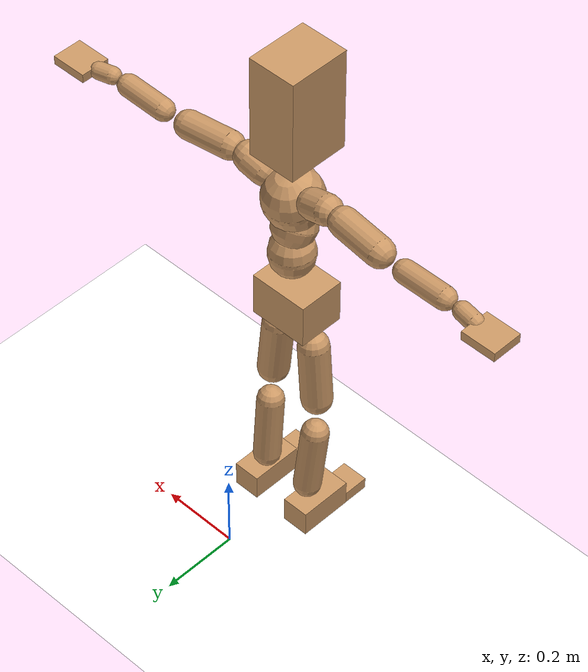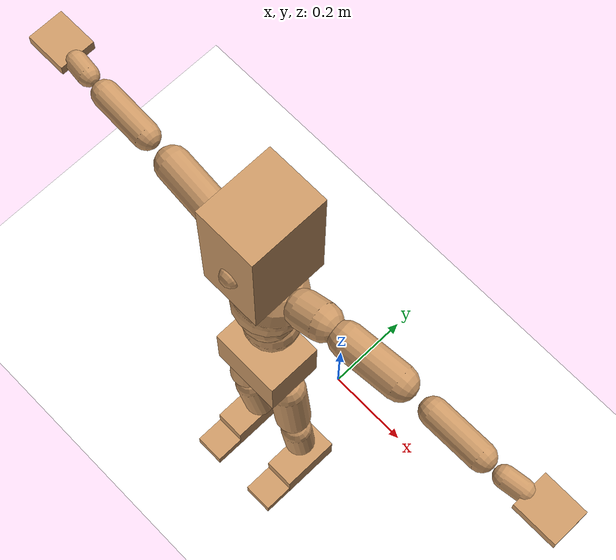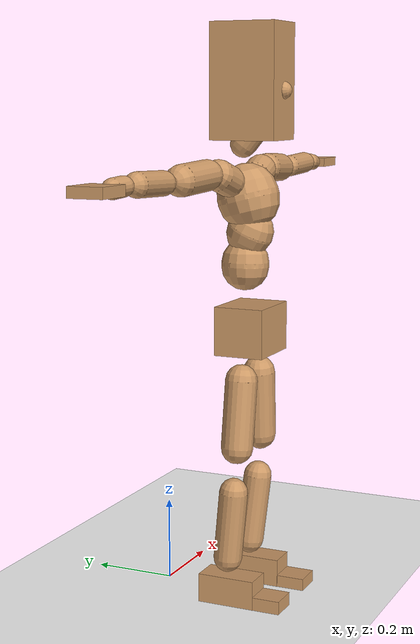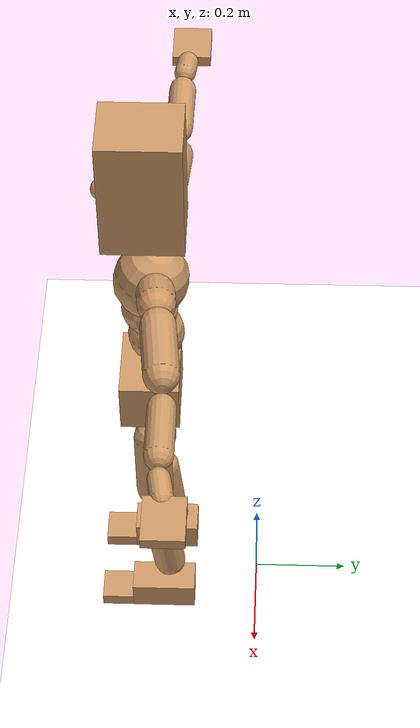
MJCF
<mujoco model="humanoid">
  <option integrator="implicitfast" />

  <visual>
    <global offwidth="1280" offheight="960" />
    <headlight active="1" ambient="0.34 0.34 0.34" diffuse="0.5 0.5 0.5" />
  </visual>

  <default>
    <joint damping="2" stiffness="2" armature="0.01" limited="true" solimplimit="0 .99 .01" />
    <geom condim="1" friction="0.7 0.005 0.0001" solimp=".99 .99 .003" solref="0.015 1" margin="0.001" rgba="0.8 0.6 .4 1" />
    <default class="smplcontact">
      <geom condim="3" friction="1. 0.005 0.0001" solref="0.015 1" solimp="0.98 0.98 0.001" priority="1" />
    </default>
    <default class="stiff_medium">
      <joint stiffness="10" />
    </default>
    <default class="stiff_medium_higher">
      <joint stiffness="50" />
    </default>
    <default class="stiff_high">
      <joint stiffness="100" />
    </default>
  </default>

  <asset>
    <texture type="skybox" builtin="gradient" rgb1="0.99 0.99 0.99" rgb2="0.608 0.828 0.892" width="100" />
    <texture builtin="flat" height="1278" mark="cross" markrgb="1 1 1" name="texgeom" random="0.01" rgb1="0.8 0.6 0.4" rgb2="0.8 0.6 0.4" type="cube" width="127" />
    <texture name="texplane" type="2d" builtin="checker" markrgb="1 1 1" rgb1="0.756 0.772 0.76" rgb2="0.6 0.6 0.6" width="100" height="100" />
    <material name="MatPlane" reflectance="0.5" texture="texplane" texrepeat="1 1" texuniform="true" />
    <material name="geom" texture="texgeom" texuniform="true" />
  </asset>

  <worldbody>
    <light name="tracking_light" pos="0 0 7" dir="0 0 -1" directional="true" cutoff="100" exponent="1" diffuse="1 1 1" specular="0.1 0.1 0.1" mode="trackcom" />
    <camera name="back" pos="0 3 2.4" xyaxes="-1 0 0 0 -1 2" mode="trackcom" />
    <camera name="side" pos="-3 0 2.4" xyaxes="0 -1 0 1 0 2" mode="trackcom" />
    <camera name="front_side" pos="-2.8 -2.8 0.8" xyaxes="0.5 -0.5 0 0.1 0.1 1" mode="trackcom" />
    <geom condim="3" name="floor" pos="0 0 0" rgba="1 1 1 1" size="100 100 .2" type="plane" material="MatPlane" />
    <body name="Pelvis" pos="-0.0018 -0.2233 0.663306" euler="90 0 0">
      <site name="Pelvis" size="0.01" />
      <freejoint name="Pelvis" />
      <geom type="box" pos="0 -0.00967277 -0.00397375" size="0.0772353 0.0577169 0.0599675" quat="1.0000 0.0000 0.0000 0.0000" density="3165.830099" name="Pelvis" />
      <body name="L_Hip" pos="0.0502138 -0.0730654 -0.004913">
        <joint name="L_Hip_x" type="hinge" pos="0 0 0" axis="1 0 0" stiffness="10" range="-160.0 22.92" class="stiff_medium" damping="15" />
        <joint name="L_Hip_y" type="hinge" pos="0 0 0" axis="0 1 0" stiffness="10" range="-70.0 70.0" class="stiff_medium" damping="10" />
        <joint name="L_Hip_z" type="hinge" pos="0 0 0" axis="0 0 1" stiffness="10" range="-28.65 90.0" class="stiff_medium" damping="10" />
        <geom type="capsule" density="2040.816327" fromto="0.0048 -0.0522268 -0.000626669 0.0190752 -0.209045 -0.00250682" size="0.0387081" name="L_Hip" />
        <body name="L_Knee" pos="0.0238752 -0.261272 -0.00313349">
          <joint name="L_Knee_x" type="hinge" pos="0 0 0" axis="1 0 0" range="-5.16 171.89" damping="8" />
          <joint name="L_Knee_y" type="hinge" pos="0 0 0" axis="0 1 0" range="-4.58 6.88" damping="8" />
          <joint name="L_Knee_z" type="hinge" pos="0 0 0" axis="0 0 1" range="-6.88 4.58" damping="8" />
          <geom type="capsule" density="1234.567901" fromto="-0.00188236 -0.0554291 -0.00606266 -0.00759245 -0.221718 -0.0243767" size="0.0340505" name="L_Knee" />
          <body name="L_Ankle" pos="-0.00947481 -0.277147 -0.0304394">
            <joint name="L_Ankle_x" type="hinge" pos="0 0 0" axis="1 0 0" range="-45.84 45.84" class="stiff_medium" damping="6" />
            <joint name="L_Ankle_y" type="hinge" pos="0 0 0" axis="0 1 0" range="-74.48 22.92" class="stiff_medium" damping="3" />
            <joint name="L_Ankle_z" type="hinge" pos="0 0 0" axis="0 0 1" range="-4.58 4.58" class="stiff_medium" damping="6" />
            <geom type="box" pos="0.0168343 -0.0172678 0.0194416" size="0.0348968 0.033524 0.0682865" quat="1.0000 0.0000 0.0000 0.0000" density="449.071558" name="L_Ankle" class="smplcontact" />
            <body name="L_Toe" pos="0.019074 -0.0403155 0.0958422">
              <joint name="L_Toe_x" type="hinge" pos="0 0 0" axis="1 0 0" range="-91.67 22.92" />
              <joint name="L_Toe_y" type="hinge" pos="0 0 0" axis="0 1 0" range="-4.58 4.58" />
              <joint name="L_Toe_z" type="hinge" pos="0 0 0" axis="0 0 1" range="-4.58 4.58" />
              <geom type="box" pos="-0.0021675 0.00397375 0.0199236" size="0.0345355 0.01445 0.0398472" quat="1.0000 0.0000 0.0000 0.0000" density="423.206892" name="L_Toe" class="smplcontact" />
            </body>
          </body>
        </body>
      </body>
      <body name="R_Hip" pos="-0.0489132 -0.0723459 -0.00310675">
        <joint name="R_Hip_x" type="hinge" pos="0 0 0" axis="1 0 0" stiffness="10" range="-160.0 22.92" class="stiff_medium" damping="15" />
        <joint name="R_Hip_y" type="hinge" pos="0 0 0" axis="0 1 0" stiffness="10" range="-70.0 70.0" class="stiff_medium" damping="10" />
        <joint name="R_Hip_z" type="hinge" pos="0 0 0" axis="0 0 1" stiffness="10" range="-90.0 28.65" class="stiff_medium" damping="10" />
        <geom type="capsule" density="2040.816327" fromto="-0.00535728 -0.0532714 -0.00125116 -0.0213037 -0.213154 -0.00494183" size="0.0381416" name="R_Hip" />
        <body name="R_Knee" pos="-0.026661 -0.266425 -0.00619299">
          <joint name="R_Knee_x" type="hinge" pos="0 0 0" axis="1 0 0" range="-5.16 171.89" damping="8" />
          <joint name="R_Knee_y" type="hinge" pos="0 0 0" axis="0 1 0" range="-6.88 4.58" damping="8" />
          <joint name="R_Knee_z" type="hinge" pos="0 0 0" axis="0 0 1" range="-4.58 6.88" damping="8" />
          <geom type="capsule" density="1234.567901" fromto="0.00222397 -0.0554999 -0.00591483 0.00876968 -0.221928 -0.0235325" size="0.0340505" name="R_Knee" />
          <body name="R_Ankle" pos="0.0109937 -0.277428 -0.0294474">
            <joint name="R_Ankle_x" type="hinge" pos="0 0 0" axis="1 0 0" range="-45.84 45.84" class="stiff_medium" damping="6" />
            <joint name="R_Ankle_y" type="hinge" pos="0 0 0" axis="0 1 0" range="-22.92 74.48" class="stiff_medium" damping="3" />
            <joint name="R_Ankle_z" type="hinge" pos="0 0 0" axis="0 0 1" range="-4.58 4.58" class="stiff_medium" damping="6" />
            <geom type="box" pos="-0.015317 -0.0125715 0.0205663" size="0.0348968 0.0345355 0.0694916" quat="1.0000 0.0000 0.0000 0.0000" density="434.700981" name="R_Ankle" class="smplcontact" />
            <body name="R_Toe" pos="-0.0183515 -0.0347522 0.0990557">
              <joint name="R_Toe_x" type="hinge" pos="0 0 0" axis="1 0 0" range="-91.67 22.92" />
              <joint name="R_Toe_y" type="hinge" pos="0 0 0" axis="0 1 0" range="-4.58 4.58" />
              <joint name="R_Toe_z" type="hinge" pos="0 0 0" axis="0 0 1" range="-4.58 4.58" />
              <geom type="box" pos="0.0030345 0.00325125 0.0182365" size="0.0346077 0.015606 0.0396062" quat="1.0000 0.0000 0.0000 0.0000" density="407.384095" name="R_Toe" class="smplcontact" />
            </body>
          </body>
        </body>
      </body>
      <body name="Torso" pos="-0.00180625 0.0871349 -0.0192908">
        <joint name="Torso_x" type="hinge" pos="0 0 0" axis="1 0 0" range="-25.78 57.3" class="stiff_medium" damping="15" />
        <joint name="Torso_y" type="hinge" pos="0 0 0" axis="0 1 0" range="-57.3 57.3" class="stiff_high" damping="20" />
        <joint name="Torso_z" type="hinge" pos="0 0 0" axis="0 0 1" range="-34.38 34.38" class="stiff_high" damping="20" />
        <geom type="capsule" density="2040.816327" fromto="0.00199976 0.0491031 0.000399951 0.00240356 0.0600057 0.000480712" size="0.0561293" name="Torso" />
        <body name="Spine" pos="0.0044036 0.10919 0.00088072">
          <joint name="Spine_x" type="hinge" pos="0 0 0" axis="1 0 0" stiffness="10" range="-25.78 57.3" class="stiff_medium" damping="15" />
          <joint name="Spine_y" type="hinge" pos="0 0 0" axis="0 1 0" stiffness="10" range="-57.3 57.3" class="stiff_high" damping="8" />
          <joint name="Spine_z" type="hinge" pos="0 0 0" axis="0 0 1" stiffness="20" range="-34.38 34.38" class="stiff_high" damping="12" />
          <geom type="capsule" density="2040.816327" fromto="0.00054567 0.0192128 0.00922409 0.00062643 0.0234931 0.0113239" size="0.0551074" name="Spine" />
          <body name="Chest" pos="0.0011721 0.0427059 0.0205479">
            <joint name="Chest_x" type="hinge" pos="0 0 0" axis="1 0 0" stiffness="10" range="-25.78 57.3" class="stiff_medium" damping="15" />
            <joint name="Chest_y" type="hinge" pos="0 0 0" axis="0 1 0" stiffness="10" range="-57.3 57.3" class="stiff_high" damping="8" />
            <joint name="Chest_z" type="hinge" pos="0 0 0" axis="0 0 1" stiffness="20" range="-34.38 34.38" class="stiff_high" damping="12" />
            <geom type="capsule" density="2040.816327" fromto="-0.000691968 0.0550729 -0.0139945 -0.000772728 0.0672677 -0.0171442" size="0.073136" name="Chest" />
            <body name="Neck" pos="-0.00215226 0.172515 -0.0355457">
              <joint name="Neck_x" type="hinge" pos="0 0 0" axis="1 0 0" range="-28.65 57.3" class="stiff_medium_higher" damping="10" />
              <joint name="Neck_y" type="hinge" pos="0 0 0" axis="0 1 0" range="-40.11 40.11" class="stiff_medium_higher" damping="10" />
              <joint name="Neck_z" type="hinge" pos="0 0 0" axis="0 0 1" range="-40.11 40.11" class="stiff_medium_higher" damping="10" />
              <geom type="capsule" density="1000" fromto="0.000806036 0.0104449 0.00827303 0.00329649 0.0417764 0.0330169" size="0.031658" name="Neck" />
              <body name="Head" pos="0.00417486 0.052218 0.0412146">
                <joint name="Head_x" type="hinge" pos="0 0 0" axis="1 0 0" range="-28.65 57.3" class="stiff_medium_higher" damping="2" />
                <joint name="Head_y" type="hinge" pos="0 0 0" axis="0 1 0" range="-40.11 40.11" class="stiff_medium_higher" damping="2" />
                <joint name="Head_z" type="hinge" pos="0 0 0" axis="0 0 1" range="-40.11 40.11" class="stiff_medium_higher" damping="2" />
                <geom type="box" pos="-0.00438732 0.101258 -0.0121174" size="0.0633028 0.133392 0.0793896" quat="1.0000 0.0000 0.0000 0.0000" density="1018.069894" name="Head" />
                <geom type="capsule" name="nose" size="0.020892 0.010446" pos="0 0.0809139 0.05223" quat="1 0 0 0" mass="0" contype="0" conaffinity="0" />
              </body>
            </body>
            <body name="L_Thorax" pos="0.0574534 0.0982972 -0.0273351">
              <joint name="L_Thorax_x" type="hinge" pos="0 0 0" axis="1 0 0" range="-10.89 4.58" class="stiff_medium_higher" damping="20" />
              <joint name="L_Thorax_y" type="hinge" pos="0 0 0" axis="0 1 0" range="-28.65 17.19" class="stiff_medium_higher" damping="20" />
              <joint name="L_Thorax_z" type="hinge" pos="0 0 0" axis="0 0 1" range="-31.51 40.11" class="stiff_medium_higher" damping="20" />
              <geom type="capsule" density="1000" fromto="0.0144025 0.00482721 -0.00142188 0.0576093 0.0193086 -0.00561595" size="0.0372567" name="L_Thorax" />
              <body name="L_Shoulder" pos="0.0720118 0.0241358 -0.00703782">
                <joint name="L_Shoulder_x" type="hinge" pos="0 0 0" axis="1 0 0" range="-97.4 97.4" class="stiff_medium" damping="6" />
                <joint name="L_Shoulder_y" type="hinge" pos="0 0 0" axis="0 1 0" range="-108.86 80.21" class="stiff_medium" damping="6" />
                <joint name="L_Shoulder_z" type="hinge" pos="0 0 0" axis="0 0 1" range="-97.4 85.94" class="stiff_medium" damping="6" />
                <geom type="capsule" density="1000" fromto="0.0384272 -0.0019202 -0.00407199 0.153782 -0.00754726 -0.0162886" size="0.0345976" name="L_Shoulder" />
                <body name="L_Elbow" pos="0.192209 -0.00946746 -0.0203606">
                  <joint name="L_Elbow_x" type="hinge" pos="0 0 0" axis="1 0 0" range="-17.19 4.58" damping="5" />
                  <joint name="L_Elbow_y" type="hinge" pos="0 0 0" axis="0 1 0" range="-180.0 17.19" damping="5" />
                  <joint name="L_Elbow_z" type="hinge" pos="0 0 0" axis="0 0 1" range="-100.84 4.58" damping="5" />
                  <geom type="capsule" density="1000" fromto="0.0368721 0.00133255 -0.000150432 0.147636 0.00533073 -0.000668714" size="0.0271026" name="L_Elbow" />
                  <body name="L_Wrist" pos="0.184508 0.00666329 -0.000886066">
                    <joint name="L_Wrist_x" type="hinge" pos="0 0 0" axis="1 0 0" range="-180.0 22.92" />
                    <joint name="L_Wrist_y" type="hinge" pos="0 0 0" axis="0 1 0" range="-17.19 17.19" />
                    <joint name="L_Wrist_z" type="hinge" pos="0 0 0" axis="0 0 1" range="-22.92 22.92" />
                    <geom type="capsule" density="1000" fromto="0.0124386 -0.001187 -0.00222117 0.0497549 -0.00481497 -0.0088848" size="0.0212806" name="L_Wrist" class="smplcontact" />
                    <body name="L_Hand" pos="0.0621929 -0.00606883 -0.0110389">
                      <joint name="L_Hand_x" type="hinge" pos="0 0 0" axis="1 0 0" range="-17.19 17.19" />
                      <joint name="L_Hand_y" type="hinge" pos="0 0 0" axis="0 1 0" range="-51.57 51.57" />
                      <joint name="L_Hand_z" type="hinge" pos="0 0 0" axis="0 0 1" range="-91.67 91.67" />
                      <geom type="box" pos="0.0394105 0.0007225 -0.0041905" size="0.046765 0.0114155 0.0388705" quat="1.0000 0.0000 0.0000 0.0000" density="400.552564" name="L_Hand" class="smplcontact" />
                    </body>
                  </body>
                </body>
              </body>
            </body>
            <body name="R_Thorax" pos="-0.0597682 0.0961314 -0.0306069">
              <joint name="R_Thorax_x" type="hinge" pos="0 0 0" axis="1 0 0" range="-10.89 4.58" class="stiff_medium_higher" damping="20" />
              <joint name="R_Thorax_y" type="hinge" pos="0 0 0" axis="0 1 0" range="-17.19 28.65" class="stiff_medium_higher" damping="20" />
              <joint name="R_Thorax_z" type="hinge" pos="0 0 0" axis="0 0 1" range="-40.11 31.51" class="stiff_medium_higher" damping="20" />
              <geom type="capsule" density="1000" fromto="-0.0151934 0.00514359 -0.00142692 -0.0607742 0.0205746 -0.00577925" size="0.0365416" name="R_Thorax" />
              <body name="R_Shoulder" pos="-0.0759698 0.0257905 -0.00720639">
                <joint name="R_Shoulder_x" type="hinge" pos="0 0 0" axis="1 0 0" range="-97.4 97.4" class="stiff_medium" damping="6" />
                <joint name="R_Shoulder_y" type="hinge" pos="0 0 0" axis="0 1 0" range="-80.21 108.86" class="stiff_medium" damping="6" />
                <joint name="R_Shoulder_z" type="hinge" pos="0 0 0" axis="0 0 1" range="-85.94 97.4" class="stiff_medium" damping="6" />
                <geom type="capsule" density="1000" fromto="-0.0375388 -0.00199648 -0.00318099 -0.150302 -0.00791971 -0.0126582" size="0.0355345" name="R_Shoulder" />
                <body name="R_Elbow" pos="-0.187841 -0.00984925 -0.0158391">
                  <joint name="R_Elbow_x" type="hinge" pos="0 0 0" axis="1 0 0" range="-17.19 4.58" damping="5" />
                  <joint name="R_Elbow_y" type="hinge" pos="0 0 0" axis="0 1 0" range="-17.19 180.0" damping="5" />
                  <joint name="R_Elbow_z" type="hinge" pos="0 0 0" axis="0 0 1" range="-4.58 100.84" damping="5" />
                  <geom type="capsule" density="1000" fromto="-0.0378347 0.00118004 -0.000814549 -0.15119 0.0045859 -0.00325788" size="0.0273034" name="R_Elbow" />
                  <body name="R_Wrist" pos="-0.189025 0.00576595 -0.00413935">
                    <joint name="R_Wrist_x" type="hinge" pos="0 0 0" axis="1 0 0" range="-180.0 22.92" />
                    <joint name="R_Wrist_y" type="hinge" pos="0 0 0" axis="0 1 0" range="-17.19 17.19" />
                    <joint name="R_Wrist_z" type="hinge" pos="0 0 0" axis="0 0 1" range="-22.92 22.92" />
                    <geom type="capsule" density="1000" fromto="-0.012513 -0.000890696 -0.0015522 -0.0501255 -0.00363019 -0.0061427" size="0.0218159" name="R_Wrist" class="smplcontact" />
                    <body name="R_Hand" pos="-0.0626376 -0.00452082 -0.00762788">
                      <joint name="R_Hand_x" type="hinge" pos="0 0 0" axis="1 0 0" range="-17.19 17.19" />
                      <joint name="R_Hand_y" type="hinge" pos="0 0 0" axis="0 1 0" range="-51.57 51.57" />
                      <joint name="R_Hand_z" type="hinge" pos="0 0 0" axis="0 0 1" range="-91.67 91.67" />
                      <geom type="box" pos="-0.0369324 -0.00065025 -0.00570775" size="0.045486 0.011849 0.0394485" quat="1.0000 0.0000 0.0000 0.0000" density="403.679611" name="R_Hand" class="smplcontact" />
                    </body>
                  </body>
                </body>
              </body>
            </body>
          </body>
        </body>
      </body>
    </body>
  </worldbody>
  <actuator>
    <general name="L_Hip_x" joint="L_Hip_x" biastype="affine" gainprm="287.33006409732246" biasprm="-215.3247604770444 -180 -2.0" ctrllimited="true" ctrlrange="-1 1" forcerange="-360 360" />
    <general name="L_Hip_y" joint="L_Hip_y" biastype="affine" gainprm="219.9114857512855" biasprm="0.0 -180 -2.0" ctrllimited="true" ctrlrange="-1 1" forcerange="-360 360" />
    <general name="L_Hip_z" joint="L_Hip_z" biastype="affine" gainprm="186.3749841742145" biasprm="96.3683546488669 -180 -2.0" ctrllimited="true" ctrlrange="-1 1" forcerange="-360 360" />
    <general name="L_Knee_x" joint="L_Knee_x" biastype="affine" gainprm="278.10948965903646" biasprm="261.8988715665131 -180 -2.0" ctrllimited="true" ctrlrange="-1 1" forcerange="-360 360" />
    <general name="L_Knee_y" joint="L_Knee_y" biastype="affine" gainprm="18.001325905069514" biasprm="3.612831551628262 -180 -2.0" ctrllimited="true" ctrlrange="-1 1" forcerange="-360 360" />
    <general name="L_Knee_z" joint="L_Knee_z" biastype="affine" gainprm="18.001325905069514" biasprm="-3.612831551628262 -180 -2.0" ctrllimited="true" ctrlrange="-1 1" forcerange="-360 360" />
    <general name="L_Ankle_x" joint="L_Ankle_x" biastype="affine" gainprm="72.00530362027807" biasprm="0.0 -90 -2.0" ctrllimited="true" ctrlrange="-1 1" forcerange="-180 180" />
    <general name="L_Ankle_y" joint="L_Ankle_y" biastype="affine" gainprm="76.49778111491148" biasprm="-40.49512930477244 -90 -2.0" ctrllimited="true" ctrlrange="-1 1" forcerange="-180 180" />
    <general name="L_Ankle_z" joint="L_Ankle_z" biastype="affine" gainprm="7.1942471767206255" biasprm="0.0 -90 -2.0" ctrllimited="true" ctrlrange="-1 1" forcerange="-180 180" />
    <general name="L_Toe_x" joint="L_Toe_x" biastype="affine" gainprm="71.99902043497087" biasprm="-43.19689898685965 -72 -0.8" ctrllimited="true" ctrlrange="-1 1" forcerange="-144 144" />
    <general name="L_Toe_y" joint="L_Toe_y" biastype="affine" gainprm="5.755397741376501" biasprm="0.0 -72 -0.8" ctrllimited="true" ctrlrange="-1 1" forcerange="-144 144" />
    <general name="L_Toe_z" joint="L_Toe_z" biastype="affine" gainprm="5.755397741376501" biasprm="0.0 -72 -0.8" ctrllimited="true" ctrlrange="-1 1" forcerange="-144 144" />
    <general name="R_Hip_x" joint="R_Hip_x" biastype="affine" gainprm="287.33006409732246" biasprm="-215.3247604770444 -180 -2.0" ctrllimited="true" ctrlrange="-1 1" forcerange="-360 360" />
    <general name="R_Hip_y" joint="R_Hip_y" biastype="affine" gainprm="219.9114857512855" biasprm="0.0 -180 -2.0" ctrllimited="true" ctrlrange="-1 1" forcerange="-360 360" />
    <general name="R_Hip_z" joint="R_Hip_z" biastype="affine" gainprm="186.3749841742145" biasprm="-96.3683546488669 -180 -2.0" ctrllimited="true" ctrlrange="-1 1" forcerange="-360 360" />
    <general name="R_Knee_x" joint="R_Knee_x" biastype="affine" gainprm="278.10948965903646" biasprm="261.8988715665131 -180 -2.0" ctrllimited="true" ctrlrange="-1 1" forcerange="-360 360" />
    <general name="R_Knee_y" joint="R_Knee_y" biastype="affine" gainprm="18.001325905069514" biasprm="-3.612831551628262 -180 -2.0" ctrllimited="true" ctrlrange="-1 1" forcerange="-360 360" />
    <general name="R_Knee_z" joint="R_Knee_z" biastype="affine" gainprm="18.001325905069514" biasprm="3.612831551628262 -180 -2.0" ctrllimited="true" ctrlrange="-1 1" forcerange="-360 360" />
    <general name="R_Ankle_x" joint="R_Ankle_x" biastype="affine" gainprm="72.00530362027807" biasprm="0.0 -90 -2.0" ctrllimited="true" ctrlrange="-1 1" forcerange="-180 180" />
    <general name="R_Ankle_y" joint="R_Ankle_y" biastype="affine" gainprm="76.49778111491148" biasprm="40.49512930477244 -90 -2.0" ctrllimited="true" ctrlrange="-1 1" forcerange="-180 180" />
    <general name="R_Ankle_z" joint="R_Ankle_z" biastype="affine" gainprm="7.1942471767206255" biasprm="0.0 -90 -2.0" ctrllimited="true" ctrlrange="-1 1" forcerange="-180 180" />
    <general name="R_Toe_x" joint="R_Toe_x" biastype="affine" gainprm="71.99902043497087" biasprm="-43.19689898685965 -72 -0.8" ctrllimited="true" ctrlrange="-1 1" forcerange="-144 144" />
    <general name="R_Toe_y" joint="R_Toe_y" biastype="affine" gainprm="5.755397741376501" biasprm="0.0 -72 -0.8" ctrllimited="true" ctrlrange="-1 1" forcerange="-144 144" />
    <general name="R_Toe_z" joint="R_Toe_z" biastype="affine" gainprm="5.755397741376501" biasprm="0.0 -72 -0.8" ctrllimited="true" ctrlrange="-1 1" forcerange="-144 144" />
    <general name="Torso_x" joint="Torso_x" biastype="affine" gainprm="174.00234510682668" biasprm="66.0153336274335 -240 -4.0" ctrllimited="true" ctrlrange="-1 1" forcerange="-360 360" />
    <general name="Torso_y" joint="Torso_y" biastype="affine" gainprm="240.0176787342602" biasprm="0.0 -240 -4.0" ctrllimited="true" ctrlrange="-1 1" forcerange="-360 360" />
    <general name="Torso_z" joint="Torso_z" biastype="affine" gainprm="144.01060724055614" biasprm="0.0 -240 -4.0" ctrllimited="true" ctrlrange="-1 1" forcerange="-360 360" />
    <general name="Spine_x" joint="Spine_x" biastype="affine" gainprm="174.00234510682668" biasprm="66.0153336274335 -240 -4.0" ctrllimited="true" ctrlrange="-1 1" forcerange="-360 360" />
    <general name="Spine_y" joint="Spine_y" biastype="affine" gainprm="240.0176787342602" biasprm="0.0 -240 -4.0" ctrllimited="true" ctrlrange="-1 1" forcerange="-360 360" />
    <general name="Spine_z" joint="Spine_z" biastype="affine" gainprm="144.01060724055614" biasprm="0.0 -240 -4.0" ctrllimited="true" ctrlrange="-1 1" forcerange="-360 360" />
    <general name="Chest_x" joint="Chest_x" biastype="affine" gainprm="174.00234510682668" biasprm="66.0153336274335 -240 -4.0" ctrllimited="true" ctrlrange="-1 1" forcerange="-360 360" />
    <general name="Chest_y" joint="Chest_y" biastype="affine" gainprm="240.0176787342602" biasprm="0.0 -240 -4.0" ctrllimited="true" ctrlrange="-1 1" forcerange="-360 360" />
    <general name="Chest_z" joint="Chest_z" biastype="affine" gainprm="144.01060724055614" biasprm="0.0 -240 -4.0" ctrllimited="true" ctrlrange="-1 1" forcerange="-360 360" />
    <general name="Neck_x" joint="Neck_x" biastype="affine" gainprm="27.00198885760427" biasprm="9.000662952534757 -36 -0.8" ctrllimited="true" ctrlrange="-1 1" forcerange="-72 72" />
    <general name="Neck_y" joint="Neck_y" biastype="affine" gainprm="25.20185626709732" biasprm="0.0 -36 -0.8" ctrllimited="true" ctrlrange="-1 1" forcerange="-72 72" />
    <general name="Neck_z" joint="Neck_z" biastype="affine" gainprm="25.20185626709732" biasprm="0.0 -36 -0.8" ctrllimited="true" ctrlrange="-1 1" forcerange="-72 72" />
    <general name="Head_x" joint="Head_x" biastype="affine" gainprm="18.001325905069514" biasprm="6.000441968356505 -24 -0.8" ctrllimited="true" ctrlrange="-1 1" forcerange="-48 48" />
    <general name="Head_y" joint="Head_y" biastype="affine" gainprm="16.801237511398213" biasprm="0.0 -24 -0.8" ctrllimited="true" ctrlrange="-1 1" forcerange="-48 48" />
    <general name="Head_z" joint="Head_z" biastype="affine" gainprm="16.801237511398213" biasprm="0.0 -24 -0.8" ctrllimited="true" ctrlrange="-1 1" forcerange="-48 48" />
    <general name="L_Thorax_x" joint="L_Thorax_x" biastype="affine" gainprm="16.200146117011364" biasprm="-6.6078165480505335 -120 -1.6" ctrllimited="true" ctrlrange="-1 1" forcerange="-240 240" />
    <general name="L_Thorax_y" joint="L_Thorax_y" biastype="affine" gainprm="48.00353574685204" biasprm="-12.00088393671301 -120 -1.6" ctrllimited="true" ctrlrange="-1 1" forcerange="-240 240" />
    <general name="L_Thorax_z" joint="L_Thorax_z" biastype="affine" gainprm="75.00028861670033" biasprm="9.00589894029074 -120 -1.6" ctrllimited="true" ctrlrange="-1 1" forcerange="-240 240" />
    <general name="L_Shoulder_x" joint="L_Shoulder_x" biastype="affine" gainprm="81.5976331892389" biasprm="0.0 -48 -1.6" ctrllimited="true" ctrlrange="-1 1" forcerange="-96 96" />
    <general name="L_Shoulder_y" joint="L_Shoulder_y" biastype="affine" gainprm="79.19745640189629" biasprm="-12.00088393671301 -48 -1.6" ctrllimited="true" ctrlrange="-1 1" forcerange="-96 96" />
    <general name="L_Shoulder_z" joint="L_Shoulder_z" biastype="affine" gainprm="76.79727961455369" biasprm="-4.800353574685214 -48 -1.6" ctrllimited="true" ctrlrange="-1 1" forcerange="-96 96" />
    <general name="L_Elbow_x" joint="L_Elbow_x" biastype="affine" gainprm="13.67849441372996" biasprm="-7.923096672353461 -72 -0.8" ctrllimited="true" ctrlrange="-1 1" forcerange="-144 144" />
    <general name="L_Elbow_y" joint="L_Elbow_y" biastype="affine" gainprm="123.89813107227425" biasprm="-102.29653998619085 -72 -0.8" ctrllimited="true" ctrlrange="-1 1" forcerange="-144 144" />
    <general name="L_Elbow_z" joint="L_Elbow_z" biastype="affine" gainprm="66.23733950828719" biasprm="-60.4819417669107 -72 -0.8" ctrllimited="true" ctrlrange="-1 1" forcerange="-144 144" />
    <general name="L_Wrist_x" joint="L_Wrist_x" biastype="affine" gainprm="21.24973270888136" biasprm="-16.449379134196157 -12 -0.8" ctrllimited="true" ctrlrange="-1 1" forcerange="-24 24" />
    <general name="L_Wrist_y" joint="L_Wrist_y" biastype="affine" gainprm="3.6002651810139037" biasprm="0.0 -12 -0.8" ctrllimited="true" ctrlrange="-1 1" forcerange="-24 24" />
    <general name="L_Wrist_z" joint="L_Wrist_z" biastype="affine" gainprm="4.800353574685205" biasprm="0.0 -12 -0.8" ctrllimited="true" ctrlrange="-1 1" forcerange="-24 24" />
    <general name="L_Hand_x" joint="L_Hand_x" biastype="affine" gainprm="3.6002651810139037" biasprm="0.0 -12 -0.8" ctrllimited="true" ctrlrange="-1 1" forcerange="-24 24" />
    <general name="L_Hand_y" joint="L_Hand_y" biastype="affine" gainprm="10.800795543041708" biasprm="0.0 -12 -0.8" ctrllimited="true" ctrlrange="-1 1" forcerange="-24 24" />
    <general name="L_Hand_z" joint="L_Hand_z" biastype="affine" gainprm="19.199319903638422" biasprm="0.0 -12 -0.8" ctrllimited="true" ctrlrange="-1 1" forcerange="-24 24" />
    <general name="R_Thorax_x" joint="R_Thorax_x" biastype="affine" gainprm="16.200146117011364" biasprm="-6.6078165480505335 -120 -1.6" ctrllimited="true" ctrlrange="-1 1" forcerange="-240 240" />
    <general name="R_Thorax_y" joint="R_Thorax_y" biastype="affine" gainprm="48.00353574685204" biasprm="12.000883936713002 -120 -1.6" ctrllimited="true" ctrlrange="-1 1" forcerange="-240 240" />
    <general name="R_Thorax_z" joint="R_Thorax_z" biastype="affine" gainprm="75.00028861670033" biasprm="-9.00589894029074 -120 -1.6" ctrllimited="true" ctrlrange="-1 1" forcerange="-240 240" />
    <general name="R_Shoulder_x" joint="R_Shoulder_x" biastype="affine" gainprm="81.5976331892389" biasprm="0.0 -48 -1.6" ctrllimited="true" ctrlrange="-1 1" forcerange="-96 96" />
    <general name="R_Shoulder_y" joint="R_Shoulder_y" biastype="affine" gainprm="79.19745640189629" biasprm="12.00088393671301 -48 -1.6" ctrllimited="true" ctrlrange="-1 1" forcerange="-96 96" />
    <general name="R_Shoulder_z" joint="R_Shoulder_z" biastype="affine" gainprm="76.79727961455369" biasprm="4.800353574685204 -48 -1.6" ctrllimited="true" ctrlrange="-1 1" forcerange="-96 96" />
    <general name="R_Elbow_x" joint="R_Elbow_x" biastype="affine" gainprm="13.67849441372996" biasprm="-7.923096672353461 -72 -0.8" ctrllimited="true" ctrlrange="-1 1" forcerange="-144 144" />
    <general name="R_Elbow_y" joint="R_Elbow_y" biastype="affine" gainprm="123.89813107227425" biasprm="102.29653998619085 -72 -0.8" ctrllimited="true" ctrlrange="-1 1" forcerange="-144 144" />
    <general name="R_Elbow_z" joint="R_Elbow_z" biastype="affine" gainprm="66.23733950828719" biasprm="60.481941766910694 -72 -0.8" ctrllimited="true" ctrlrange="-1 1" forcerange="-144 144" />
    <general name="R_Wrist_x" joint="R_Wrist_x" biastype="affine" gainprm="21.24973270888136" biasprm="-16.449379134196157 -12 -0.8" ctrllimited="true" ctrlrange="-1 1" forcerange="-24 24" />
    <general name="R_Wrist_y" joint="R_Wrist_y" biastype="affine" gainprm="3.6002651810139037" biasprm="0.0 -12 -0.8" ctrllimited="true" ctrlrange="-1 1" forcerange="-24 24" />
    <general name="R_Wrist_z" joint="R_Wrist_z" biastype="affine" gainprm="4.800353574685205" biasprm="0.0 -12 -0.8" ctrllimited="true" ctrlrange="-1 1" forcerange="-24 24" />
    <general name="R_Hand_x" joint="R_Hand_x" biastype="affine" gainprm="3.6002651810139037" biasprm="0.0 -12 -0.8" ctrllimited="true" ctrlrange="-1 1" forcerange="-24 24" />
    <general name="R_Hand_y" joint="R_Hand_y" biastype="affine" gainprm="10.800795543041708" biasprm="0.0 -12 -0.8" ctrllimited="true" ctrlrange="-1 1" forcerange="-24 24" />
    <general name="R_Hand_z" joint="R_Hand_z" biastype="affine" gainprm="19.199319903638422" biasprm="0.0 -12 -0.8" ctrllimited="true" ctrlrange="-1 1" forcerange="-24 24" />
  </actuator>
  <contact>
    <exclude body1="Torso" body2="Chest" />
    <exclude body1="Head" body2="Chest" />
    <exclude body1="R_Knee" body2="R_Toe" />
    <exclude body1="R_Knee" body2="L_Ankle" />
    <exclude body1="R_Knee" body2="L_Toe" />
    <exclude body1="L_Knee" body2="L_Toe" />
    <exclude body1="L_Knee" body2="R_Ankle" />
    <exclude body1="L_Knee" body2="R_Toe" />
    <exclude body1="L_Shoulder" body2="Chest" />
    <exclude body1="R_Shoulder" body2="Chest" />
  </contact>
  <sensor>
    <framelinvel name="sensor_Pelvis_framelinvel" objtype="xbody" objname="Pelvis" />
    <framelinvel name="sensor_L_Hip_framelinvel" objtype="xbody" objname="L_Hip" />
    <framelinvel name="sensor_L_Knee_framelinvel" objtype="xbody" objname="L_Knee" />
    <framelinvel name="sensor_L_Ankle_framelinvel" objtype="xbody" objname="L_Ankle" />
    <framelinvel name="sensor_L_Toe_framelinvel" objtype="xbody" objname="L_Toe" />
    <framelinvel name="sensor_R_Hip_framelinvel" objtype="xbody" objname="R_Hip" />
    <framelinvel name="sensor_R_Knee_framelinvel" objtype="xbody" objname="R_Knee" />
    <framelinvel name="sensor_R_Ankle_framelinvel" objtype="xbody" objname="R_Ankle" />
    <framelinvel name="sensor_R_Toe_framelinvel" objtype="xbody" objname="R_Toe" />
    <framelinvel name="sensor_Torso_framelinvel" objtype="xbody" objname="Torso" />
    <framelinvel name="sensor_Spine_framelinvel" objtype="xbody" objname="Spine" />
    <framelinvel name="sensor_Chest_framelinvel" objtype="xbody" objname="Chest" />
    <framelinvel name="sensor_Neck_framelinvel" objtype="xbody" objname="Neck" />
    <framelinvel name="sensor_Head_framelinvel" objtype="xbody" objname="Head" />
    <framelinvel name="sensor_L_Thorax_framelinvel" objtype="xbody" objname="L_Thorax" />
    <framelinvel name="sensor_L_Shoulder_framelinvel" objtype="xbody" objname="L_Shoulder" />
    <framelinvel name="sensor_L_Elbow_framelinvel" objtype="xbody" objname="L_Elbow" />
    <framelinvel name="sensor_L_Wrist_framelinvel" objtype="xbody" objname="L_Wrist" />
    <framelinvel name="sensor_L_Hand_framelinvel" objtype="xbody" objname="L_Hand" />
    <framelinvel name="sensor_R_Thorax_framelinvel" objtype="xbody" objname="R_Thorax" />
    <framelinvel name="sensor_R_Shoulder_framelinvel" objtype="xbody" objname="R_Shoulder" />
    <framelinvel name="sensor_R_Elbow_framelinvel" objtype="xbody" objname="R_Elbow" />
    <framelinvel name="sensor_R_Wrist_framelinvel" objtype="xbody" objname="R_Wrist" />
    <framelinvel name="sensor_R_Hand_framelinvel" objtype="xbody" objname="R_Hand" />
    <frameangvel name="sensor_Pelvis_frameangvel" objtype="xbody" objname="Pelvis" />
    <frameangvel name="sensor_L_Hip_frameangvel" objtype="xbody" objname="L_Hip" />
    <frameangvel name="sensor_L_Knee_frameangvel" objtype="xbody" objname="L_Knee" />
    <frameangvel name="sensor_L_Ankle_frameangvel" objtype="xbody" objname="L_Ankle" />
    <frameangvel name="sensor_L_Toe_frameangvel" objtype="xbody" objname="L_Toe" />
    <frameangvel name="sensor_R_Hip_frameangvel" objtype="xbody" objname="R_Hip" />
    <frameangvel name="sensor_R_Knee_frameangvel" objtype="xbody" objname="R_Knee" />
    <frameangvel name="sensor_R_Ankle_frameangvel" objtype="xbody" objname="R_Ankle" />
    <frameangvel name="sensor_R_Toe_frameangvel" objtype="xbody" objname="R_Toe" />
    <frameangvel name="sensor_Torso_frameangvel" objtype="xbody" objname="Torso" />
    <frameangvel name="sensor_Spine_frameangvel" objtype="xbody" objname="Spine" />
    <frameangvel name="sensor_Chest_frameangvel" objtype="xbody" objname="Chest" />
    <frameangvel name="sensor_Neck_frameangvel" objtype="xbody" objname="Neck" />
    <frameangvel name="sensor_Head_frameangvel" objtype="xbody" objname="Head" />
    <frameangvel name="sensor_L_Thorax_frameangvel" objtype="xbody" objname="L_Thorax" />
    <frameangvel name="sensor_L_Shoulder_frameangvel" objtype="xbody" objname="L_Shoulder" />
    <frameangvel name="sensor_L_Elbow_frameangvel" objtype="xbody" objname="L_Elbow" />
    <frameangvel name="sensor_L_Wrist_frameangvel" objtype="xbody" objname="L_Wrist" />
    <frameangvel name="sensor_L_Hand_frameangvel" objtype="xbody" objname="L_Hand" />
    <frameangvel name="sensor_R_Thorax_frameangvel" objtype="xbody" objname="R_Thorax" />
    <frameangvel name="sensor_R_Shoulder_frameangvel" objtype="xbody" objname="R_Shoulder" />
    <frameangvel name="sensor_R_Elbow_frameangvel" objtype="xbody" objname="R_Elbow" />
    <frameangvel name="sensor_R_Wrist_frameangvel" objtype="xbody" objname="R_Wrist" />
    <frameangvel name="sensor_R_Hand_frameangvel" objtype="xbody" objname="R_Hand" />
    <subtreelinvel name="Chest_subtreelinvel" body="Chest" />
    <gyro name="Pelvis_gyro" site="Pelvis" />
  </sensor>
</mujoco>
